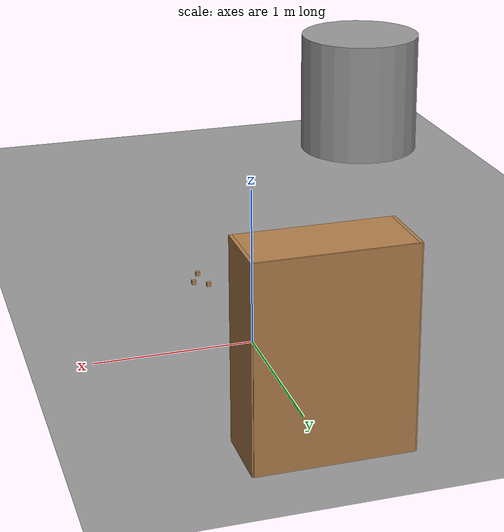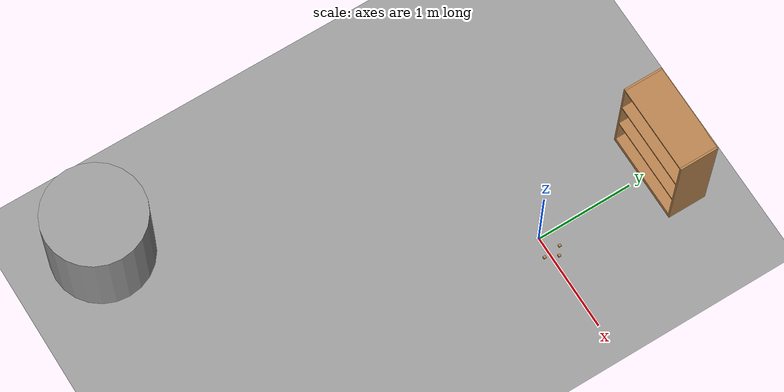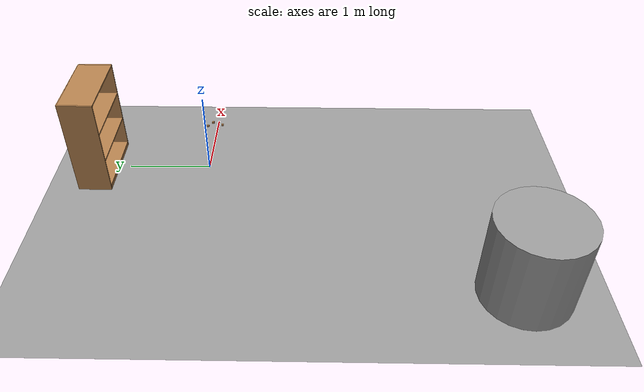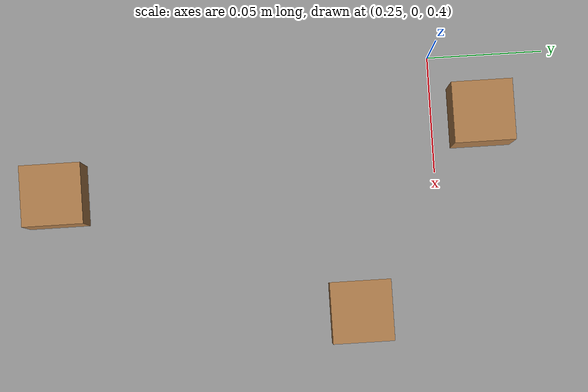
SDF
<sdf version="1.4">
 <world name="default">
  <light name="sun" type="directional">
   <pose>0 0 10 0 -0 0</pose>
   <diffuse>0.8 0.8 0.8 1</diffuse>
   <specular>0.2 0.2 0.2 1</specular>
   <attenuation>
    <range>1000</range>
    <constant>0.9</constant>
    <linear>0.01</linear>
    <quadratic>0.001</quadratic>
   </attenuation>
   <direction>0.5 0.1 -0.9</direction>
  </light>
  <scene><ambient>0.4 0.4 0.4 1</ambient><background>0.7 0.7 0.7 1</background><shadows>1</shadows></scene>
  <physics type="ode">
   <max_step_size>0.01</max_step_size>
   <real_time_factor>1</real_time_factor>
   <real_time_update_rate>100</real_time_update_rate>
   <gravity>0 0 -9.8</gravity>
  </physics>
  <model name="bookshelf">
   <static>1</static>
   <link name="link">
    <inertial><mass>1</mass></inertial>
    <collision name="back">
     <pose>0 0.005 0.6 0 -0 0</pose>
     <geometry><box><size>0.9 0.01 1.2</size></box></geometry>
    </collision>
    <visual name="visual1">
     <pose>0 0.005 0.6 0 -0 0</pose>
     <geometry><box><size>0.9 0.01 1.2</size></box></geometry>
     <material>
      <script><uri>file://media/materials/scripts/gazebo.material</uri><name>Gazebo/Wood</name></script>
     </material>
    </visual>
    <collision name="left_side">
     <pose>0.45 -0.195 0.6 0 -0 0</pose>
     <geometry><box><size>0.02 0.4 1.2</size></box></geometry>
    </collision>
    <visual name="visual2">
     <pose>0.45 -0.195 0.6 0 -0 0</pose>
     <geometry><box><size>0.02 0.4 1.2</size></box></geometry>
     <material>
      <script><uri>file://media/materials/scripts/gazebo.material</uri><name>Gazebo/Wood</name></script>
     </material>
    </visual>
    <collision name="right_side">
     <pose>-0.45 -0.195 0.6 0 -0 0</pose>
     <geometry><box><size>0.02 0.4 1.2</size></box></geometry>
    </collision>
    <visual name="visual3">
     <pose>-0.45 -0.195 0.6 0 -0 0</pose>
     <geometry><box><size>0.02 0.4 1.2</size></box></geometry>
     <material>
      <script><uri>file://media/materials/scripts/gazebo.material</uri><name>Gazebo/Wood</name></script>
     </material>
    </visual>
    <collision name="bottom">
     <pose>0 -0.195 0.03 0 -0 0</pose>
     <geometry><box><size>0.88 0.4 0.06</size></box></geometry>
    </collision>
    <visual name="visual4">
     <pose>0 -0.195 0.03 0 -0 0</pose>
     <geometry><box><size>0.88 0.4 0.06</size></box></geometry>
     <material>
      <script><uri>file://media/materials/scripts/gazebo.material</uri><name>Gazebo/Wood</name></script>
     </material>
    </visual>
    <collision name="top">
     <pose>0 -0.195 1.19 0 -0 0</pose>
     <geometry><box><size>0.88 0.4 0.02</size></box></geometry>
    </collision>
    <visual name="visual5">
     <pose>0 -0.195 1.19 0 -0 0</pose>
     <geometry><box><size>0.88 0.4 0.02</size></box></geometry>
     <material>
      <script><uri>file://media/materials/scripts/gazebo.material</uri><name>Gazebo/Wood</name></script>
     </material>
    </visual>
    <collision name="low_shelf">
     <pose>0 -0.195 0.43 0 -0 0</pose>
     <geometry><box><size>0.88 0.4 0.02</size></box></geometry>
    </collision>
    <visual name="visual6">
     <pose>0 -0.195 0.43 0 -0 0</pose>
     <geometry><box><size>0.88 0.4 0.02</size></box></geometry>
     <material>
      <script><uri>file://media/materials/scripts/gazebo.material</uri><name>Gazebo/Wood</name></script>
     </material>
    </visual>
    <collision name="high_shelf">
     <pose>0 -0.195 0.8 0 -0 0</pose>
     <geometry><box><size>0.88 0.4 0.02</size></box></geometry>
    </collision>
    <visual name="visual7">
     <pose>0 -0.195 0.8 0 -0 0</pose>
     <geometry><box><size>0.88 0.4 0.02</size></box></geometry>
     <material>
      <script><uri>file://media/materials/scripts/gazebo.material</uri><name>Gazebo/Wood</name></script>
     </material>
    </visual>
    <velocity_decay><linear>0</linear><angular>0</angular></velocity_decay>
   </link>
   <pose>0 1.53026 0 0 -0 0</pose>
  </model>
  <model name="ground_plane_0">
   <static>1</static>
   <link name="link">
    <collision name="collision">
     <geometry><plane><normal>0 0 1</normal><size>100 100</size></plane></geometry>
     <surface><friction><ode><mu>100</mu><mu2>50</mu2></ode></friction></surface>
    </collision>
    <visual name="visual">
     <cast_shadows>0</cast_shadows>
     <geometry><plane><normal>0 0 1</normal><size>100 100</size></plane></geometry>
     <material>
      <script><uri>file://media/materials/scripts/gazebo.material</uri><name>Gazebo/Grey</name></script>
     </material>
    </visual>
    <velocity_decay><linear>0</linear><angular>0</angular></velocity_decay>
   </link>
   <pose>0.497681 0 0 0 -0 0</pose>
  </model>
  <model name="unit_cylinder_1">
   <pose>-2 -3.4888 0.49912 -0 -0 -0</pose>
   <link name="link">
    <inertial>
     <mass>1</mass>
     <inertia><ixx>1</ixx><ixy>0</ixy><ixz>0</ixz><iyy>1</iyy><iyz>0</iyz><izz>1</izz></inertia>
    </inertial>
    <collision name="collision">
     <geometry><cylinder><radius>0.5</radius><length>1</length></cylinder></geometry>
    </collision>
    <visual name="visual">
     <geometry><cylinder><radius>0.5</radius><length>1</length></cylinder></geometry>
     <material>
      <script><uri>file://media/materials/scripts/gazebo.material</uri><name>Gazebo/Grey</name></script>
     </material>
    </visual>
    <velocity_decay><linear>0</linear><angular>0</angular></velocity_decay>
   </link>
   <static>0</static>
  </model>
  <model name="wood_cube_2_5cm_0">
   <link name="link">
    <pose>0 0 0.0125 0 -0 0</pose>
    <inertial>
     <mass>0.0073</mass>
     <inertia>
      <ixx>7.60417e-07</ixx>
      <ixy>0</ixy>
      <ixz>0</ixz>
      <iyy>7.60417e-07</iyy>
      <iyz>0</iyz>
      <izz>7.60417e-07</izz>
     </inertia>
    </inertial>
    <collision name="collision">
     <geometry><box><size>0.025 0.025 0.025</size></box></geometry>
     <surface><contact><ode><max_vel>0.1</max_vel><min_depth>0.001</min_depth></ode></contact></surface>
    </collision>
    <visual name="visual">
     <geometry><box><size>0.025 0.025 0.025</size></box></geometry>
     <material>
      <script><uri>file://media/materials/scripts/gazebo.material</uri><name>Gazebo/Wood</name></script>
     </material>
    </visual>
    <velocity_decay><linear>0</linear><angular>0</angular></velocity_decay>
   </link>
   <pose>0.279395 0.017524 0.423961 -8.07794e-28 1e-06 -7e-06</pose>
   <static>0</static>
  </model>
  <model name="wood_cube_2_5cm_1">
   <link name="link">
    <pose>0 0 0.0125 0 -0 0</pose>
    <inertial>
     <mass>0.0073</mass>
     <inertia>
      <ixx>7.60417e-07</ixx>
      <ixy>0</ixy>
      <ixz>0</ixz>
      <iyy>7.60417e-07</iyy>
      <iyz>0</iyz>
      <izz>7.60417e-07</izz>
     </inertia>
    </inertial>
    <collision name="collision">
     <geometry><box><size>0.025 0.025 0.025</size></box></geometry>
     <surface><contact><ode><max_vel>0.1</max_vel><min_depth>0.001</min_depth></ode></contact></surface>
    </collision>
    <visual name="visual">
     <geometry><box><size>0.025 0.025 0.025</size></box></geometry>
     <material>
      <script><uri>file://media/materials/scripts/gazebo.material</uri><name>Gazebo/Wood</name></script>
     </material>
    </visual>
    <velocity_decay><linear>0</linear><angular>0</angular></velocity_decay>
   </link>
   <pose>0.357627 -0.037121 0.423961 -2e-06 2e-06 2e-06</pose>
   <static>0</static>
  </model>
  <model name="wood_cube_2_5cm_2">
   <link name="link">
    <pose>0 0 0.0125 0 -0 0</pose>
    <inertial>
     <mass>0.0073</mass>
     <inertia>
      <ixx>7.60417e-07</ixx>
      <ixy>0</ixy>
      <ixz>0</ixz>
      <iyy>7.60417e-07</iyy>
      <iyz>0</iyz>
      <izz>7.60417e-07</izz>
     </inertia>
    </inertial>
    <collision name="collision">
     <geometry><box><size>0.025 0.025 0.025</size></box></geometry>
     <surface><contact><ode><max_vel>0.1</max_vel><min_depth>0.001</min_depth></ode></contact></surface>
    </collision>
    <visual name="visual">
     <geometry><box><size>0.025 0.025 0.025</size></box></geometry>
     <material>
      <script><uri>file://media/materials/scripts/gazebo.material</uri><name>Gazebo/Wood</name></script>
     </material>
    </visual>
    <velocity_decay><linear>0</linear><angular>0</angular></velocity_decay>
   </link>
   <pose>0.302415 -0.160046 0.423981 -2e-06 2e-06 2e-06</pose>
   <static>0</static>
  </model>
  <spherical_coordinates>
   <surface_model>EARTH_WGS84</surface_model>
   <latitude_deg>0</latitude_deg>
   <longitude_deg>0</longitude_deg>
   <elevation>0</elevation>
   <heading_deg>0</heading_deg>
  </spherical_coordinates>
 </world>
</sdf>
